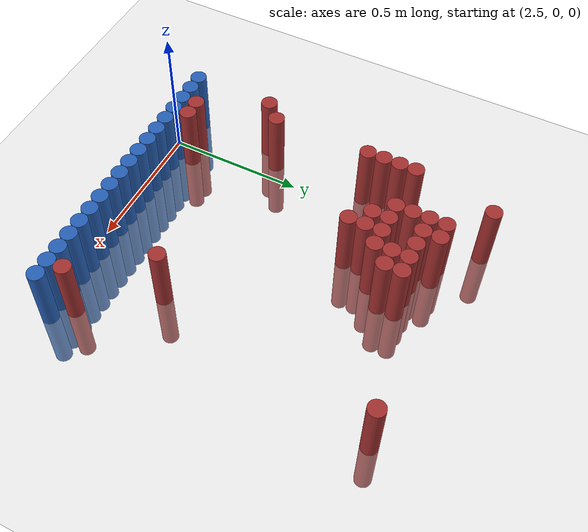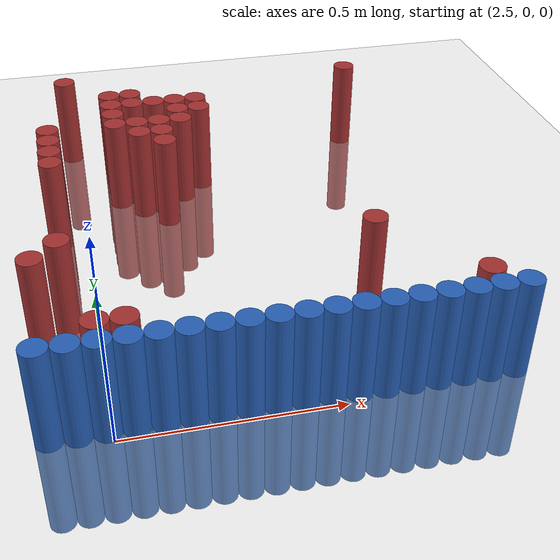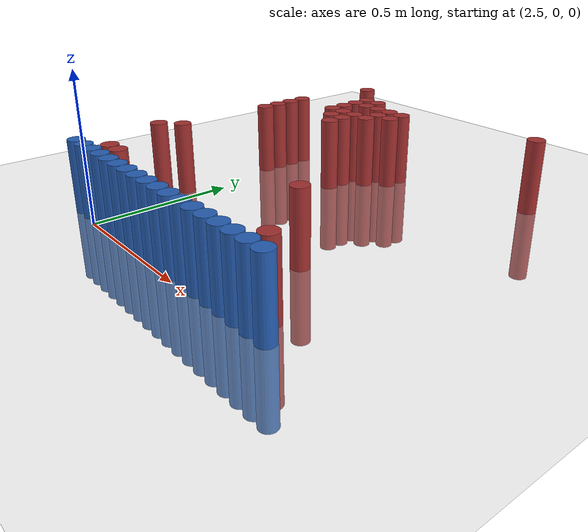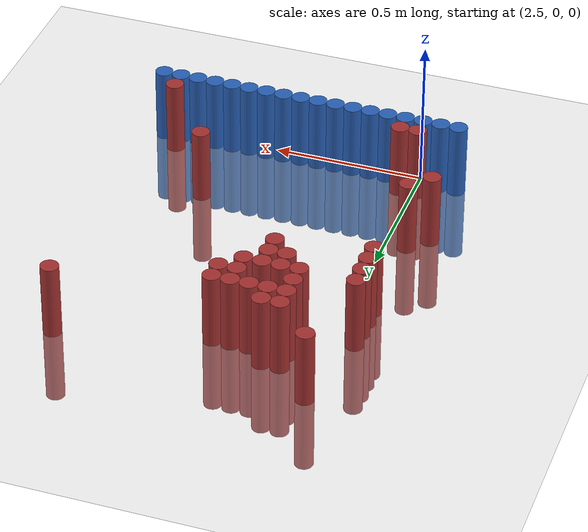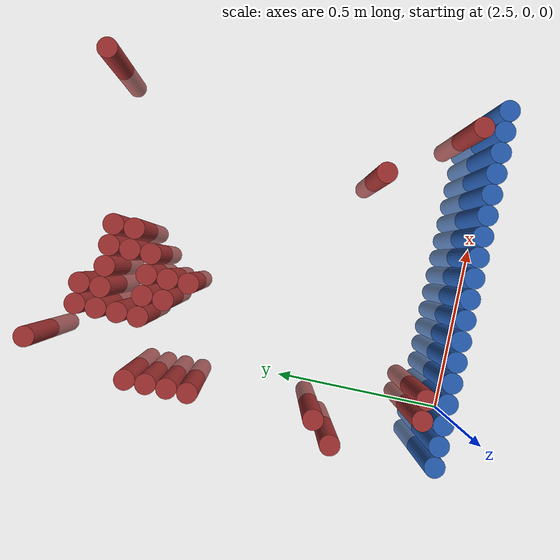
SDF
<sdf version="1.6">
 <world name="default">
  <model name="ground_plane">
   <static>1</static>
   <link name="link">
    <collision name="collision">
     <geometry><plane><normal>0 0 1</normal><size>100 100</size></plane></geometry>
     <surface><friction><ode><mu>100</mu><mu2>50</mu2></ode></friction></surface>
    </collision>
    <visual name="visual">
     <cast_shadows>0</cast_shadows>
     <geometry><plane><normal>0 0 1</normal><size>100 100</size></plane></geometry>
     <material>
      <script><uri>file://media/materials/scripts/gazebo.material</uri><name>Gazebo/Grey</name></script>
     </material>
    </visual>
   </link>
  </model>
  <model name="unit_cylinder_196">
   <static>1</static>
   <pose>2.490000 1.230000 0.000000 0.000000 0.000000 0.000000</pose>
   <link name="link">
    <inertial>
     <mass>1</mass>
     <inertia><ixx>0.145833</ixx><ixy>0</ixy><ixz>0</ixz><iyy>0.145833</iyy><iyz>0</iyz><izz>0.125</izz></inertia>
    </inertial>
    <collision name="collision">
     <geometry><cylinder><radius>0.030000</radius><length>0.5</length></cylinder></geometry>
    </collision>
    <visual name="visual">
     <geometry><cylinder><radius>0.030000</radius><length>0.5</length></cylinder></geometry>
     <material>
      <ambient>0.648000 0.192000 0.192000 1</ambient>
      <diffuse>0.648000 0.192000 0.192000 1</diffuse>
     </material>
     <material>
      <script><name>Gazebo/Grey</name><uri>file://media/materials/scripts/gazebo.material</uri></script>
     </material>
    </visual>
   </link>
  </model>
  <model name="unit_cylinder_205">
   <static>1</static>
   <pose>3.330000 1.170000 0.000000 0.000000 0.000000 0.000000</pose>
   <link name="link">
    <inertial>
     <mass>1</mass>
     <inertia><ixx>0.145833</ixx><ixy>0</ixy><ixz>0</ixz><iyy>0.145833</iyy><iyz>0</iyz><izz>0.125</izz></inertia>
    </inertial>
    <collision name="collision">
     <geometry><cylinder><radius>0.030000</radius><length>0.5</length></cylinder></geometry>
    </collision>
    <visual name="visual">
     <geometry><cylinder><radius>0.030000</radius><length>0.5</length></cylinder></geometry>
     <material>
      <ambient>0.648000 0.192000 0.192000 1</ambient>
      <diffuse>0.648000 0.192000 0.192000 1</diffuse>
     </material>
     <material>
      <script><name>Gazebo/Grey</name><uri>file://media/materials/scripts/gazebo.material</uri></script>
     </material>
    </visual>
   </link>
  </model>
  <model name="unit_cylinder_209">
   <static>1</static>
   <pose>2.610000 1.110000 0.000000 0.000000 0.000000 0.000000</pose>
   <link name="link">
    <inertial>
     <mass>1</mass>
     <inertia><ixx>0.145833</ixx><ixy>0</ixy><ixz>0</ixz><iyy>0.145833</iyy><iyz>0</iyz><izz>0.125</izz></inertia>
    </inertial>
    <collision name="collision">
     <geometry><cylinder><radius>0.030000</radius><length>0.5</length></cylinder></geometry>
    </collision>
    <visual name="visual">
     <geometry><cylinder><radius>0.030000</radius><length>0.5</length></cylinder></geometry>
     <material>
      <ambient>0.648000 0.192000 0.192000 1</ambient>
      <diffuse>0.648000 0.192000 0.192000 1</diffuse>
     </material>
     <material>
      <script><name>Gazebo/Grey</name><uri>file://media/materials/scripts/gazebo.material</uri></script>
     </material>
    </visual>
   </link>
  </model>
  <model name="unit_cylinder_210">
   <static>1</static>
   <pose>2.670000 1.110000 0.000000 0.000000 0.000000 0.000000</pose>
   <link name="link">
    <inertial>
     <mass>1</mass>
     <inertia><ixx>0.145833</ixx><ixy>0</ixy><ixz>0</ixz><iyy>0.145833</iyy><iyz>0</iyz><izz>0.125</izz></inertia>
    </inertial>
    <collision name="collision">
     <geometry><cylinder><radius>0.030000</radius><length>0.5</length></cylinder></geometry>
    </collision>
    <visual name="visual">
     <geometry><cylinder><radius>0.030000</radius><length>0.5</length></cylinder></geometry>
     <material>
      <ambient>0.648000 0.192000 0.192000 1</ambient>
      <diffuse>0.648000 0.192000 0.192000 1</diffuse>
     </material>
     <material>
      <script><name>Gazebo/Grey</name><uri>file://media/materials/scripts/gazebo.material</uri></script>
     </material>
    </visual>
   </link>
  </model>
  <model name="unit_cylinder_212">
   <static>1</static>
   <pose>2.610000 1.050000 0.000000 0.000000 0.000000 0.000000</pose>
   <link name="link">
    <inertial>
     <mass>1</mass>
     <inertia><ixx>0.145833</ixx><ixy>0</ixy><ixz>0</ixz><iyy>0.145833</iyy><iyz>0</iyz><izz>0.125</izz></inertia>
    </inertial>
    <collision name="collision">
     <geometry><cylinder><radius>0.030000</radius><length>0.5</length></cylinder></geometry>
    </collision>
    <visual name="visual">
     <geometry><cylinder><radius>0.030000</radius><length>0.5</length></cylinder></geometry>
     <material>
      <ambient>0.648000 0.192000 0.192000 1</ambient>
      <diffuse>0.648000 0.192000 0.192000 1</diffuse>
     </material>
     <material>
      <script><name>Gazebo/Grey</name><uri>file://media/materials/scripts/gazebo.material</uri></script>
     </material>
    </visual>
   </link>
  </model>
  <model name="unit_cylinder_213">
   <static>1</static>
   <pose>2.670000 1.050000 0.000000 0.000000 0.000000 0.000000</pose>
   <link name="link">
    <inertial>
     <mass>1</mass>
     <inertia><ixx>0.145833</ixx><ixy>0</ixy><ixz>0</ixz><iyy>0.145833</iyy><iyz>0</iyz><izz>0.125</izz></inertia>
    </inertial>
    <collision name="collision">
     <geometry><cylinder><radius>0.030000</radius><length>0.5</length></cylinder></geometry>
    </collision>
    <visual name="visual">
     <geometry><cylinder><radius>0.030000</radius><length>0.5</length></cylinder></geometry>
     <material>
      <ambient>0.648000 0.192000 0.192000 1</ambient>
      <diffuse>0.648000 0.192000 0.192000 1</diffuse>
     </material>
     <material>
      <script><name>Gazebo/Grey</name><uri>file://media/materials/scripts/gazebo.material</uri></script>
     </material>
    </visual>
   </link>
  </model>
  <model name="unit_cylinder_214">
   <static>1</static>
   <pose>2.730000 1.050000 0.000000 0.000000 0.000000 0.000000</pose>
   <link name="link">
    <inertial>
     <mass>1</mass>
     <inertia><ixx>0.145833</ixx><ixy>0</ixy><ixz>0</ixz><iyy>0.145833</iyy><iyz>0</iyz><izz>0.125</izz></inertia>
    </inertial>
    <collision name="collision">
     <geometry><cylinder><radius>0.030000</radius><length>0.5</length></cylinder></geometry>
    </collision>
    <visual name="visual">
     <geometry><cylinder><radius>0.030000</radius><length>0.5</length></cylinder></geometry>
     <material>
      <ambient>0.648000 0.192000 0.192000 1</ambient>
      <diffuse>0.648000 0.192000 0.192000 1</diffuse>
     </material>
     <material>
      <script><name>Gazebo/Grey</name><uri>file://media/materials/scripts/gazebo.material</uri></script>
     </material>
    </visual>
   </link>
  </model>
  <model name="unit_cylinder_215">
   <static>1</static>
   <pose>2.790000 1.050000 0.000000 0.000000 0.000000 0.000000</pose>
   <link name="link">
    <inertial>
     <mass>1</mass>
     <inertia><ixx>0.145833</ixx><ixy>0</ixy><ixz>0</ixz><iyy>0.145833</iyy><iyz>0</iyz><izz>0.125</izz></inertia>
    </inertial>
    <collision name="collision">
     <geometry><cylinder><radius>0.030000</radius><length>0.5</length></cylinder></geometry>
    </collision>
    <visual name="visual">
     <geometry><cylinder><radius>0.030000</radius><length>0.5</length></cylinder></geometry>
     <material>
      <ambient>0.648000 0.192000 0.192000 1</ambient>
      <diffuse>0.648000 0.192000 0.192000 1</diffuse>
     </material>
     <material>
      <script><name>Gazebo/Grey</name><uri>file://media/materials/scripts/gazebo.material</uri></script>
     </material>
    </visual>
   </link>
  </model>
  <model name="unit_cylinder_216">
   <static>1</static>
   <pose>2.850000 1.050000 0.000000 0.000000 0.000000 0.000000</pose>
   <link name="link">
    <inertial>
     <mass>1</mass>
     <inertia><ixx>0.145833</ixx><ixy>0</ixy><ixz>0</ixz><iyy>0.145833</iyy><iyz>0</iyz><izz>0.125</izz></inertia>
    </inertial>
    <collision name="collision">
     <geometry><cylinder><radius>0.030000</radius><length>0.5</length></cylinder></geometry>
    </collision>
    <visual name="visual">
     <geometry><cylinder><radius>0.030000</radius><length>0.5</length></cylinder></geometry>
     <material>
      <ambient>0.648000 0.192000 0.192000 1</ambient>
      <diffuse>0.648000 0.192000 0.192000 1</diffuse>
     </material>
     <material>
      <script><name>Gazebo/Grey</name><uri>file://media/materials/scripts/gazebo.material</uri></script>
     </material>
    </visual>
   </link>
  </model>
  <model name="unit_cylinder_219">
   <static>1</static>
   <pose>2.610000 0.990000 0.000000 0.000000 0.000000 0.000000</pose>
   <link name="link">
    <inertial>
     <mass>1</mass>
     <inertia><ixx>0.145833</ixx><ixy>0</ixy><ixz>0</ixz><iyy>0.145833</iyy><iyz>0</iyz><izz>0.125</izz></inertia>
    </inertial>
    <collision name="collision">
     <geometry><cylinder><radius>0.030000</radius><length>0.5</length></cylinder></geometry>
    </collision>
    <visual name="visual">
     <geometry><cylinder><radius>0.030000</radius><length>0.5</length></cylinder></geometry>
     <material>
      <ambient>0.648000 0.192000 0.192000 1</ambient>
      <diffuse>0.648000 0.192000 0.192000 1</diffuse>
     </material>
     <material>
      <script><name>Gazebo/Grey</name><uri>file://media/materials/scripts/gazebo.material</uri></script>
     </material>
    </visual>
   </link>
  </model>
  <model name="unit_cylinder_220">
   <static>1</static>
   <pose>2.790000 0.990000 0.000000 0.000000 0.000000 0.000000</pose>
   <link name="link">
    <inertial>
     <mass>1</mass>
     <inertia><ixx>0.145833</ixx><ixy>0</ixy><ixz>0</ixz><iyy>0.145833</iyy><iyz>0</iyz><izz>0.125</izz></inertia>
    </inertial>
    <collision name="collision">
     <geometry><cylinder><radius>0.030000</radius><length>0.5</length></cylinder></geometry>
    </collision>
    <visual name="visual">
     <geometry><cylinder><radius>0.030000</radius><length>0.5</length></cylinder></geometry>
     <material>
      <ambient>0.648000 0.192000 0.192000 1</ambient>
      <diffuse>0.648000 0.192000 0.192000 1</diffuse>
     </material>
     <material>
      <script><name>Gazebo/Grey</name><uri>file://media/materials/scripts/gazebo.material</uri></script>
     </material>
    </visual>
   </link>
  </model>
  <model name="unit_cylinder_221">
   <static>1</static>
   <pose>2.850000 0.990000 0.000000 0.000000 0.000000 0.000000</pose>
   <link name="link">
    <inertial>
     <mass>1</mass>
     <inertia><ixx>0.145833</ixx><ixy>0</ixy><ixz>0</ixz><iyy>0.145833</iyy><iyz>0</iyz><izz>0.125</izz></inertia>
    </inertial>
    <collision name="collision">
     <geometry><cylinder><radius>0.030000</radius><length>0.5</length></cylinder></geometry>
    </collision>
    <visual name="visual">
     <geometry><cylinder><radius>0.030000</radius><length>0.5</length></cylinder></geometry>
     <material>
      <ambient>0.648000 0.192000 0.192000 1</ambient>
      <diffuse>0.648000 0.192000 0.192000 1</diffuse>
     </material>
     <material>
      <script><name>Gazebo/Grey</name><uri>file://media/materials/scripts/gazebo.material</uri></script>
     </material>
    </visual>
   </link>
  </model>
  <model name="unit_cylinder_225">
   <static>1</static>
   <pose>2.430000 0.930000 0.000000 0.000000 0.000000 0.000000</pose>
   <link name="link">
    <inertial>
     <mass>1</mass>
     <inertia><ixx>0.145833</ixx><ixy>0</ixy><ixz>0</ixz><iyy>0.145833</iyy><iyz>0</iyz><izz>0.125</izz></inertia>
    </inertial>
    <collision name="collision">
     <geometry><cylinder><radius>0.030000</radius><length>0.5</length></cylinder></geometry>
    </collision>
    <visual name="visual">
     <geometry><cylinder><radius>0.030000</radius><length>0.5</length></cylinder></geometry>
     <material>
      <ambient>0.648000 0.192000 0.192000 1</ambient>
      <diffuse>0.648000 0.192000 0.192000 1</diffuse>
     </material>
     <material>
      <script><name>Gazebo/Grey</name><uri>file://media/materials/scripts/gazebo.material</uri></script>
     </material>
    </visual>
   </link>
  </model>
  <model name="unit_cylinder_226">
   <static>1</static>
   <pose>2.610000 0.930000 0.000000 0.000000 0.000000 0.000000</pose>
   <link name="link">
    <inertial>
     <mass>1</mass>
     <inertia><ixx>0.145833</ixx><ixy>0</ixy><ixz>0</ixz><iyy>0.145833</iyy><iyz>0</iyz><izz>0.125</izz></inertia>
    </inertial>
    <collision name="collision">
     <geometry><cylinder><radius>0.030000</radius><length>0.5</length></cylinder></geometry>
    </collision>
    <visual name="visual">
     <geometry><cylinder><radius>0.030000</radius><length>0.5</length></cylinder></geometry>
     <material>
      <ambient>0.648000 0.192000 0.192000 1</ambient>
      <diffuse>0.648000 0.192000 0.192000 1</diffuse>
     </material>
     <material>
      <script><name>Gazebo/Grey</name><uri>file://media/materials/scripts/gazebo.material</uri></script>
     </material>
    </visual>
   </link>
  </model>
  <model name="unit_cylinder_227">
   <static>1</static>
   <pose>2.670000 0.930000 0.000000 0.000000 0.000000 0.000000</pose>
   <link name="link">
    <inertial>
     <mass>1</mass>
     <inertia><ixx>0.145833</ixx><ixy>0</ixy><ixz>0</ixz><iyy>0.145833</iyy><iyz>0</iyz><izz>0.125</izz></inertia>
    </inertial>
    <collision name="collision">
     <geometry><cylinder><radius>0.030000</radius><length>0.5</length></cylinder></geometry>
    </collision>
    <visual name="visual">
     <geometry><cylinder><radius>0.030000</radius><length>0.5</length></cylinder></geometry>
     <material>
      <ambient>0.648000 0.192000 0.192000 1</ambient>
      <diffuse>0.648000 0.192000 0.192000 1</diffuse>
     </material>
     <material>
      <script><name>Gazebo/Grey</name><uri>file://media/materials/scripts/gazebo.material</uri></script>
     </material>
    </visual>
   </link>
  </model>
  <model name="unit_cylinder_228">
   <static>1</static>
   <pose>2.730000 0.930000 0.000000 0.000000 0.000000 0.000000</pose>
   <link name="link">
    <inertial>
     <mass>1</mass>
     <inertia><ixx>0.145833</ixx><ixy>0</ixy><ixz>0</ixz><iyy>0.145833</iyy><iyz>0</iyz><izz>0.125</izz></inertia>
    </inertial>
    <collision name="collision">
     <geometry><cylinder><radius>0.030000</radius><length>0.5</length></cylinder></geometry>
    </collision>
    <visual name="visual">
     <geometry><cylinder><radius>0.030000</radius><length>0.5</length></cylinder></geometry>
     <material>
      <ambient>0.648000 0.192000 0.192000 1</ambient>
      <diffuse>0.648000 0.192000 0.192000 1</diffuse>
     </material>
     <material>
      <script><name>Gazebo/Grey</name><uri>file://media/materials/scripts/gazebo.material</uri></script>
     </material>
    </visual>
   </link>
  </model>
  <model name="unit_cylinder_229">
   <static>1</static>
   <pose>2.790000 0.930000 0.000000 0.000000 0.000000 0.000000</pose>
   <link name="link">
    <inertial>
     <mass>1</mass>
     <inertia><ixx>0.145833</ixx><ixy>0</ixy><ixz>0</ixz><iyy>0.145833</iyy><iyz>0</iyz><izz>0.125</izz></inertia>
    </inertial>
    <collision name="collision">
     <geometry><cylinder><radius>0.030000</radius><length>0.5</length></cylinder></geometry>
    </collision>
    <visual name="visual">
     <geometry><cylinder><radius>0.030000</radius><length>0.5</length></cylinder></geometry>
     <material>
      <ambient>0.648000 0.192000 0.192000 1</ambient>
      <diffuse>0.648000 0.192000 0.192000 1</diffuse>
     </material>
     <material>
      <script><name>Gazebo/Grey</name><uri>file://media/materials/scripts/gazebo.material</uri></script>
     </material>
    </visual>
   </link>
  </model>
  <model name="unit_cylinder_234">
   <static>1</static>
   <pose>2.430000 0.870000 0.000000 0.000000 0.000000 0.000000</pose>
   <link name="link">
    <inertial>
     <mass>1</mass>
     <inertia><ixx>0.145833</ixx><ixy>0</ixy><ixz>0</ixz><iyy>0.145833</iyy><iyz>0</iyz><izz>0.125</izz></inertia>
    </inertial>
    <collision name="collision">
     <geometry><cylinder><radius>0.030000</radius><length>0.5</length></cylinder></geometry>
    </collision>
    <visual name="visual">
     <geometry><cylinder><radius>0.030000</radius><length>0.5</length></cylinder></geometry>
     <material>
      <ambient>0.648000 0.192000 0.192000 1</ambient>
      <diffuse>0.648000 0.192000 0.192000 1</diffuse>
     </material>
     <material>
      <script><name>Gazebo/Grey</name><uri>file://media/materials/scripts/gazebo.material</uri></script>
     </material>
    </visual>
   </link>
  </model>
  <model name="unit_cylinder_235">
   <static>1</static>
   <pose>2.670000 0.870000 0.000000 0.000000 0.000000 0.000000</pose>
   <link name="link">
    <inertial>
     <mass>1</mass>
     <inertia><ixx>0.145833</ixx><ixy>0</ixy><ixz>0</ixz><iyy>0.145833</iyy><iyz>0</iyz><izz>0.125</izz></inertia>
    </inertial>
    <collision name="collision">
     <geometry><cylinder><radius>0.030000</radius><length>0.5</length></cylinder></geometry>
    </collision>
    <visual name="visual">
     <geometry><cylinder><radius>0.030000</radius><length>0.5</length></cylinder></geometry>
     <material>
      <ambient>0.648000 0.192000 0.192000 1</ambient>
      <diffuse>0.648000 0.192000 0.192000 1</diffuse>
     </material>
     <material>
      <script><name>Gazebo/Grey</name><uri>file://media/materials/scripts/gazebo.material</uri></script>
     </material>
    </visual>
   </link>
  </model>
  <model name="unit_cylinder_236">
   <static>1</static>
   <pose>2.730000 0.870000 0.000000 0.000000 0.000000 0.000000</pose>
   <link name="link">
    <inertial>
     <mass>1</mass>
     <inertia><ixx>0.145833</ixx><ixy>0</ixy><ixz>0</ixz><iyy>0.145833</iyy><iyz>0</iyz><izz>0.125</izz></inertia>
    </inertial>
    <collision name="collision">
     <geometry><cylinder><radius>0.030000</radius><length>0.5</length></cylinder></geometry>
    </collision>
    <visual name="visual">
     <geometry><cylinder><radius>0.030000</radius><length>0.5</length></cylinder></geometry>
     <material>
      <ambient>0.648000 0.192000 0.192000 1</ambient>
      <diffuse>0.648000 0.192000 0.192000 1</diffuse>
     </material>
     <material>
      <script><name>Gazebo/Grey</name><uri>file://media/materials/scripts/gazebo.material</uri></script>
     </material>
    </visual>
   </link>
  </model>
  <model name="unit_cylinder_240">
   <static>1</static>
   <pose>2.430000 0.810000 0.000000 0.000000 0.000000 0.000000</pose>
   <link name="link">
    <inertial>
     <mass>1</mass>
     <inertia><ixx>0.145833</ixx><ixy>0</ixy><ixz>0</ixz><iyy>0.145833</iyy><iyz>0</iyz><izz>0.125</izz></inertia>
    </inertial>
    <collision name="collision">
     <geometry><cylinder><radius>0.030000</radius><length>0.5</length></cylinder></geometry>
    </collision>
    <visual name="visual">
     <geometry><cylinder><radius>0.030000</radius><length>0.5</length></cylinder></geometry>
     <material>
      <ambient>0.648000 0.192000 0.192000 1</ambient>
      <diffuse>0.648000 0.192000 0.192000 1</diffuse>
     </material>
     <material>
      <script><name>Gazebo/Grey</name><uri>file://media/materials/scripts/gazebo.material</uri></script>
     </material>
    </visual>
   </link>
  </model>
  <model name="unit_cylinder_241">
   <static>1</static>
   <pose>2.730000 0.810000 0.000000 0.000000 0.000000 0.000000</pose>
   <link name="link">
    <inertial>
     <mass>1</mass>
     <inertia><ixx>0.145833</ixx><ixy>0</ixy><ixz>0</ixz><iyy>0.145833</iyy><iyz>0</iyz><izz>0.125</izz></inertia>
    </inertial>
    <collision name="collision">
     <geometry><cylinder><radius>0.030000</radius><length>0.5</length></cylinder></geometry>
    </collision>
    <visual name="visual">
     <geometry><cylinder><radius>0.030000</radius><length>0.5</length></cylinder></geometry>
     <material>
      <ambient>0.648000 0.192000 0.192000 1</ambient>
      <diffuse>0.648000 0.192000 0.192000 1</diffuse>
     </material>
     <material>
      <script><name>Gazebo/Grey</name><uri>file://media/materials/scripts/gazebo.material</uri></script>
     </material>
    </visual>
   </link>
  </model>
  <model name="unit_cylinder_243">
   <static>1</static>
   <pose>2.430000 0.750000 0.000000 0.000000 0.000000 0.000000</pose>
   <link name="link">
    <inertial>
     <mass>1</mass>
     <inertia><ixx>0.145833</ixx><ixy>0</ixy><ixz>0</ixz><iyy>0.145833</iyy><iyz>0</iyz><izz>0.125</izz></inertia>
    </inertial>
    <collision name="collision">
     <geometry><cylinder><radius>0.030000</radius><length>0.5</length></cylinder></geometry>
    </collision>
    <visual name="visual">
     <geometry><cylinder><radius>0.030000</radius><length>0.5</length></cylinder></geometry>
     <material>
      <ambient>0.648000 0.192000 0.192000 1</ambient>
      <diffuse>0.648000 0.192000 0.192000 1</diffuse>
     </material>
     <material>
      <script><name>Gazebo/Grey</name><uri>file://media/materials/scripts/gazebo.material</uri></script>
     </material>
    </visual>
   </link>
  </model>
  <model name="unit_cylinder_266">
   <static>1</static>
   <pose>2.430000 0.390000 0.000000 0.000000 0.000000 0.000000</pose>
   <link name="link">
    <inertial>
     <mass>1</mass>
     <inertia><ixx>0.145833</ixx><ixy>0</ixy><ixz>0</ixz><iyy>0.145833</iyy><iyz>0</iyz><izz>0.125</izz></inertia>
    </inertial>
    <collision name="collision">
     <geometry><cylinder><radius>0.030000</radius><length>0.5</length></cylinder></geometry>
    </collision>
    <visual name="visual">
     <geometry><cylinder><radius>0.030000</radius><length>0.5</length></cylinder></geometry>
     <material>
      <ambient>0.648000 0.192000 0.192000 1</ambient>
      <diffuse>0.648000 0.192000 0.192000 1</diffuse>
     </material>
     <material>
      <script><name>Gazebo/Grey</name><uri>file://media/materials/scripts/gazebo.material</uri></script>
     </material>
    </visual>
   </link>
  </model>
  <model name="unit_cylinder_272">
   <static>1</static>
   <pose>2.370000 0.330000 0.000000 0.000000 0.000000 0.000000</pose>
   <link name="link">
    <inertial>
     <mass>1</mass>
     <inertia><ixx>0.145833</ixx><ixy>0</ixy><ixz>0</ixz><iyy>0.145833</iyy><iyz>0</iyz><izz>0.125</izz></inertia>
    </inertial>
    <collision name="collision">
     <geometry><cylinder><radius>0.030000</radius><length>0.5</length></cylinder></geometry>
    </collision>
    <visual name="visual">
     <geometry><cylinder><radius>0.030000</radius><length>0.5</length></cylinder></geometry>
     <material>
      <ambient>0.648000 0.192000 0.192000 1</ambient>
      <diffuse>0.648000 0.192000 0.192000 1</diffuse>
     </material>
     <material>
      <script><name>Gazebo/Grey</name><uri>file://media/materials/scripts/gazebo.material</uri></script>
     </material>
    </visual>
   </link>
  </model>
  <model name="unit_cylinder_273">
   <static>1</static>
   <pose>3.150000 0.330000 0.000000 0.000000 0.000000 0.000000</pose>
   <link name="link">
    <inertial>
     <mass>1</mass>
     <inertia><ixx>0.145833</ixx><ixy>0</ixy><ixz>0</ixz><iyy>0.145833</iyy><iyz>0</iyz><izz>0.125</izz></inertia>
    </inertial>
    <collision name="collision">
     <geometry><cylinder><radius>0.030000</radius><length>0.5</length></cylinder></geometry>
    </collision>
    <visual name="visual">
     <geometry><cylinder><radius>0.030000</radius><length>0.5</length></cylinder></geometry>
     <material>
      <ambient>0.648000 0.192000 0.192000 1</ambient>
      <diffuse>0.648000 0.192000 0.192000 1</diffuse>
     </material>
     <material>
      <script><name>Gazebo/Grey</name><uri>file://media/materials/scripts/gazebo.material</uri></script>
     </material>
    </visual>
   </link>
  </model>
  <model name="unit_cylinder_292">
   <static>1</static>
   <pose>2.490000 0.090000 0.000000 0.000000 0.000000 0.000000</pose>
   <link name="link">
    <inertial>
     <mass>1</mass>
     <inertia><ixx>0.145833</ixx><ixy>0</ixy><ixz>0</ixz><iyy>0.145833</iyy><iyz>0</iyz><izz>0.125</izz></inertia>
    </inertial>
    <collision name="collision">
     <geometry><cylinder><radius>0.030000</radius><length>0.5</length></cylinder></geometry>
    </collision>
    <visual name="visual">
     <geometry><cylinder><radius>0.030000</radius><length>0.5</length></cylinder></geometry>
     <material>
      <ambient>0.648000 0.192000 0.192000 1</ambient>
      <diffuse>0.648000 0.192000 0.192000 1</diffuse>
     </material>
     <material>
      <script><name>Gazebo/Grey</name><uri>file://media/materials/scripts/gazebo.material</uri></script>
     </material>
    </visual>
   </link>
  </model>
  <model name="unit_cylinder_293">
   <static>1</static>
   <pose>2.550000 0.090000 0.000000 0.000000 0.000000 0.000000</pose>
   <link name="link">
    <inertial>
     <mass>1</mass>
     <inertia><ixx>0.145833</ixx><ixy>0</ixy><ixz>0</ixz><iyy>0.145833</iyy><iyz>0</iyz><izz>0.125</izz></inertia>
    </inertial>
    <collision name="collision">
     <geometry><cylinder><radius>0.030000</radius><length>0.5</length></cylinder></geometry>
    </collision>
    <visual name="visual">
     <geometry><cylinder><radius>0.030000</radius><length>0.5</length></cylinder></geometry>
     <material>
      <ambient>0.648000 0.192000 0.192000 1</ambient>
      <diffuse>0.648000 0.192000 0.192000 1</diffuse>
     </material>
     <material>
      <script><name>Gazebo/Grey</name><uri>file://media/materials/scripts/gazebo.material</uri></script>
     </material>
    </visual>
   </link>
  </model>
  <model name="unit_cylinder_294">
   <static>1</static>
   <pose>3.330000 0.090000 0.000000 0.000000 0.000000 0.000000</pose>
   <link name="link">
    <inertial>
     <mass>1</mass>
     <inertia><ixx>0.145833</ixx><ixy>0</ixy><ixz>0</ixz><iyy>0.145833</iyy><iyz>0</iyz><izz>0.125</izz></inertia>
    </inertial>
    <collision name="collision">
     <geometry><cylinder><radius>0.030000</radius><length>0.5</length></cylinder></geometry>
    </collision>
    <visual name="visual">
     <geometry><cylinder><radius>0.030000</radius><length>0.5</length></cylinder></geometry>
     <material>
      <ambient>0.648000 0.192000 0.192000 1</ambient>
      <diffuse>0.648000 0.192000 0.192000 1</diffuse>
     </material>
     <material>
      <script><name>Gazebo/Grey</name><uri>file://media/materials/scripts/gazebo.material</uri></script>
     </material>
    </visual>
   </link>
  </model>
  <model name="unit_cylinder_306">
   <static>1</static>
   <pose>2.370000 0.030000 0.000000 0.000000 0.000000 0.000000</pose>
   <link name="link">
    <inertial>
     <mass>1</mass>
     <inertia><ixx>0.145833</ixx><ixy>0</ixy><ixz>0</ixz><iyy>0.145833</iyy><iyz>0</iyz><izz>0.125</izz></inertia>
    </inertial>
    <collision name="collision">
     <geometry><cylinder><radius>0.030000</radius><length>0.5</length></cylinder></geometry>
    </collision>
    <visual name="visual">
     <geometry><cylinder><radius>0.030000</radius><length>0.5</length></cylinder></geometry>
     <material>
      <ambient>0.152000 0.379000 0.720000 1</ambient>
      <diffuse>0.152000 0.379000 0.720000 1</diffuse>
     </material>
     <material>
      <script><name>Gazebo/Grey</name><uri>file://media/materials/scripts/gazebo.material</uri></script>
     </material>
    </visual>
   </link>
  </model>
  <model name="unit_cylinder_307">
   <static>1</static>
   <pose>2.430000 0.030000 0.000000 0.000000 0.000000 0.000000</pose>
   <link name="link">
    <inertial>
     <mass>1</mass>
     <inertia><ixx>0.145833</ixx><ixy>0</ixy><ixz>0</ixz><iyy>0.145833</iyy><iyz>0</iyz><izz>0.125</izz></inertia>
    </inertial>
    <collision name="collision">
     <geometry><cylinder><radius>0.030000</radius><length>0.5</length></cylinder></geometry>
    </collision>
    <visual name="visual">
     <geometry><cylinder><radius>0.030000</radius><length>0.5</length></cylinder></geometry>
     <material>
      <ambient>0.152000 0.379000 0.720000 1</ambient>
      <diffuse>0.152000 0.379000 0.720000 1</diffuse>
     </material>
     <material>
      <script><name>Gazebo/Grey</name><uri>file://media/materials/scripts/gazebo.material</uri></script>
     </material>
    </visual>
   </link>
  </model>
  <model name="unit_cylinder_308">
   <static>1</static>
   <pose>2.490000 0.030000 0.000000 0.000000 0.000000 0.000000</pose>
   <link name="link">
    <inertial>
     <mass>1</mass>
     <inertia><ixx>0.145833</ixx><ixy>0</ixy><ixz>0</ixz><iyy>0.145833</iyy><iyz>0</iyz><izz>0.125</izz></inertia>
    </inertial>
    <collision name="collision">
     <geometry><cylinder><radius>0.030000</radius><length>0.5</length></cylinder></geometry>
    </collision>
    <visual name="visual">
     <geometry><cylinder><radius>0.030000</radius><length>0.5</length></cylinder></geometry>
     <material>
      <ambient>0.152000 0.379000 0.720000 1</ambient>
      <diffuse>0.152000 0.379000 0.720000 1</diffuse>
     </material>
     <material>
      <script><name>Gazebo/Grey</name><uri>file://media/materials/scripts/gazebo.material</uri></script>
     </material>
    </visual>
   </link>
  </model>
  <model name="unit_cylinder_309">
   <static>1</static>
   <pose>2.550000 0.030000 0.000000 0.000000 0.000000 0.000000</pose>
   <link name="link">
    <inertial>
     <mass>1</mass>
     <inertia><ixx>0.145833</ixx><ixy>0</ixy><ixz>0</ixz><iyy>0.145833</iyy><iyz>0</iyz><izz>0.125</izz></inertia>
    </inertial>
    <collision name="collision">
     <geometry><cylinder><radius>0.030000</radius><length>0.5</length></cylinder></geometry>
    </collision>
    <visual name="visual">
     <geometry><cylinder><radius>0.030000</radius><length>0.5</length></cylinder></geometry>
     <material>
      <ambient>0.152000 0.379000 0.720000 1</ambient>
      <diffuse>0.152000 0.379000 0.720000 1</diffuse>
     </material>
     <material>
      <script><name>Gazebo/Grey</name><uri>file://media/materials/scripts/gazebo.material</uri></script>
     </material>
    </visual>
   </link>
  </model>
  <model name="unit_cylinder_310">
   <static>1</static>
   <pose>2.610000 0.030000 0.000000 0.000000 0.000000 0.000000</pose>
   <link name="link">
    <inertial>
     <mass>1</mass>
     <inertia><ixx>0.145833</ixx><ixy>0</ixy><ixz>0</ixz><iyy>0.145833</iyy><iyz>0</iyz><izz>0.125</izz></inertia>
    </inertial>
    <collision name="collision">
     <geometry><cylinder><radius>0.030000</radius><length>0.5</length></cylinder></geometry>
    </collision>
    <visual name="visual">
     <geometry><cylinder><radius>0.030000</radius><length>0.5</length></cylinder></geometry>
     <material>
      <ambient>0.152000 0.379000 0.720000 1</ambient>
      <diffuse>0.152000 0.379000 0.720000 1</diffuse>
     </material>
     <material>
      <script><name>Gazebo/Grey</name><uri>file://media/materials/scripts/gazebo.material</uri></script>
     </material>
    </visual>
   </link>
  </model>
  <model name="unit_cylinder_311">
   <static>1</static>
   <pose>2.670000 0.030000 0.000000 0.000000 0.000000 0.000000</pose>
   <link name="link">
    <inertial>
     <mass>1</mass>
     <inertia><ixx>0.145833</ixx><ixy>0</ixy><ixz>0</ixz><iyy>0.145833</iyy><iyz>0</iyz><izz>0.125</izz></inertia>
    </inertial>
    <collision name="collision">
     <geometry><cylinder><radius>0.030000</radius><length>0.5</length></cylinder></geometry>
    </collision>
    <visual name="visual">
     <geometry><cylinder><radius>0.030000</radius><length>0.5</length></cylinder></geometry>
     <material>
      <ambient>0.152000 0.379000 0.720000 1</ambient>
      <diffuse>0.152000 0.379000 0.720000 1</diffuse>
     </material>
     <material>
      <script><name>Gazebo/Grey</name><uri>file://media/materials/scripts/gazebo.material</uri></script>
     </material>
    </visual>
   </link>
  </model>
  <model name="unit_cylinder_312">
   <static>1</static>
   <pose>2.730000 0.030000 0.000000 0.000000 0.000000 0.000000</pose>
   <link name="link">
    <inertial>
     <mass>1</mass>
     <inertia><ixx>0.145833</ixx><ixy>0</ixy><ixz>0</ixz><iyy>0.145833</iyy><iyz>0</iyz><izz>0.125</izz></inertia>
    </inertial>
    <collision name="collision">
     <geometry><cylinder><radius>0.030000</radius><length>0.5</length></cylinder></geometry>
    </collision>
    <visual name="visual">
     <geometry><cylinder><radius>0.030000</radius><length>0.5</length></cylinder></geometry>
     <material>
      <ambient>0.152000 0.379000 0.720000 1</ambient>
      <diffuse>0.152000 0.379000 0.720000 1</diffuse>
     </material>
     <material>
      <script><name>Gazebo/Grey</name><uri>file://media/materials/scripts/gazebo.material</uri></script>
     </material>
    </visual>
   </link>
  </model>
  <model name="unit_cylinder_313">
   <static>1</static>
   <pose>2.790000 0.030000 0.000000 0.000000 0.000000 0.000000</pose>
   <link name="link">
    <inertial>
     <mass>1</mass>
     <inertia><ixx>0.145833</ixx><ixy>0</ixy><ixz>0</ixz><iyy>0.145833</iyy><iyz>0</iyz><izz>0.125</izz></inertia>
    </inertial>
    <collision name="collision">
     <geometry><cylinder><radius>0.030000</radius><length>0.5</length></cylinder></geometry>
    </collision>
    <visual name="visual">
     <geometry><cylinder><radius>0.030000</radius><length>0.5</length></cylinder></geometry>
     <material>
      <ambient>0.152000 0.379000 0.720000 1</ambient>
      <diffuse>0.152000 0.379000 0.720000 1</diffuse>
     </material>
     <material>
      <script><name>Gazebo/Grey</name><uri>file://media/materials/scripts/gazebo.material</uri></script>
     </material>
    </visual>
   </link>
  </model>
  <model name="unit_cylinder_314">
   <static>1</static>
   <pose>2.850000 0.030000 0.000000 0.000000 0.000000 0.000000</pose>
   <link name="link">
    <inertial>
     <mass>1</mass>
     <inertia><ixx>0.145833</ixx><ixy>0</ixy><ixz>0</ixz><iyy>0.145833</iyy><iyz>0</iyz><izz>0.125</izz></inertia>
    </inertial>
    <collision name="collision">
     <geometry><cylinder><radius>0.030000</radius><length>0.5</length></cylinder></geometry>
    </collision>
    <visual name="visual">
     <geometry><cylinder><radius>0.030000</radius><length>0.5</length></cylinder></geometry>
     <material>
      <ambient>0.152000 0.379000 0.720000 1</ambient>
      <diffuse>0.152000 0.379000 0.720000 1</diffuse>
     </material>
     <material>
      <script><name>Gazebo/Grey</name><uri>file://media/materials/scripts/gazebo.material</uri></script>
     </material>
    </visual>
   </link>
  </model>
  <model name="unit_cylinder_315">
   <static>1</static>
   <pose>2.910000 0.030000 0.000000 0.000000 0.000000 0.000000</pose>
   <link name="link">
    <inertial>
     <mass>1</mass>
     <inertia><ixx>0.145833</ixx><ixy>0</ixy><ixz>0</ixz><iyy>0.145833</iyy><iyz>0</iyz><izz>0.125</izz></inertia>
    </inertial>
    <collision name="collision">
     <geometry><cylinder><radius>0.030000</radius><length>0.5</length></cylinder></geometry>
    </collision>
    <visual name="visual">
     <geometry><cylinder><radius>0.030000</radius><length>0.5</length></cylinder></geometry>
     <material>
      <ambient>0.152000 0.379000 0.720000 1</ambient>
      <diffuse>0.152000 0.379000 0.720000 1</diffuse>
     </material>
     <material>
      <script><name>Gazebo/Grey</name><uri>file://media/materials/scripts/gazebo.material</uri></script>
     </material>
    </visual>
   </link>
  </model>
  <model name="unit_cylinder_316">
   <static>1</static>
   <pose>2.970000 0.030000 0.000000 0.000000 0.000000 0.000000</pose>
   <link name="link">
    <inertial>
     <mass>1</mass>
     <inertia><ixx>0.145833</ixx><ixy>0</ixy><ixz>0</ixz><iyy>0.145833</iyy><iyz>0</iyz><izz>0.125</izz></inertia>
    </inertial>
    <collision name="collision">
     <geometry><cylinder><radius>0.030000</radius><length>0.5</length></cylinder></geometry>
    </collision>
    <visual name="visual">
     <geometry><cylinder><radius>0.030000</radius><length>0.5</length></cylinder></geometry>
     <material>
      <ambient>0.152000 0.379000 0.720000 1</ambient>
      <diffuse>0.152000 0.379000 0.720000 1</diffuse>
     </material>
     <material>
      <script><name>Gazebo/Grey</name><uri>file://media/materials/scripts/gazebo.material</uri></script>
     </material>
    </visual>
   </link>
  </model>
  <model name="unit_cylinder_317">
   <static>1</static>
   <pose>3.030000 0.030000 0.000000 0.000000 0.000000 0.000000</pose>
   <link name="link">
    <inertial>
     <mass>1</mass>
     <inertia><ixx>0.145833</ixx><ixy>0</ixy><ixz>0</ixz><iyy>0.145833</iyy><iyz>0</iyz><izz>0.125</izz></inertia>
    </inertial>
    <collision name="collision">
     <geometry><cylinder><radius>0.030000</radius><length>0.5</length></cylinder></geometry>
    </collision>
    <visual name="visual">
     <geometry><cylinder><radius>0.030000</radius><length>0.5</length></cylinder></geometry>
     <material>
      <ambient>0.152000 0.379000 0.720000 1</ambient>
      <diffuse>0.152000 0.379000 0.720000 1</diffuse>
     </material>
     <material>
      <script><name>Gazebo/Grey</name><uri>file://media/materials/scripts/gazebo.material</uri></script>
     </material>
    </visual>
   </link>
  </model>
  <model name="unit_cylinder_318">
   <static>1</static>
   <pose>3.090000 0.030000 0.000000 0.000000 0.000000 0.000000</pose>
   <link name="link">
    <inertial>
     <mass>1</mass>
     <inertia><ixx>0.145833</ixx><ixy>0</ixy><ixz>0</ixz><iyy>0.145833</iyy><iyz>0</iyz><izz>0.125</izz></inertia>
    </inertial>
    <collision name="collision">
     <geometry><cylinder><radius>0.030000</radius><length>0.5</length></cylinder></geometry>
    </collision>
    <visual name="visual">
     <geometry><cylinder><radius>0.030000</radius><length>0.5</length></cylinder></geometry>
     <material>
      <ambient>0.152000 0.379000 0.720000 1</ambient>
      <diffuse>0.152000 0.379000 0.720000 1</diffuse>
     </material>
     <material>
      <script><name>Gazebo/Grey</name><uri>file://media/materials/scripts/gazebo.material</uri></script>
     </material>
    </visual>
   </link>
  </model>
  <model name="unit_cylinder_319">
   <static>1</static>
   <pose>3.150000 0.030000 0.000000 0.000000 0.000000 0.000000</pose>
   <link name="link">
    <inertial>
     <mass>1</mass>
     <inertia><ixx>0.145833</ixx><ixy>0</ixy><ixz>0</ixz><iyy>0.145833</iyy><iyz>0</iyz><izz>0.125</izz></inertia>
    </inertial>
    <collision name="collision">
     <geometry><cylinder><radius>0.030000</radius><length>0.5</length></cylinder></geometry>
    </collision>
    <visual name="visual">
     <geometry><cylinder><radius>0.030000</radius><length>0.5</length></cylinder></geometry>
     <material>
      <ambient>0.152000 0.379000 0.720000 1</ambient>
      <diffuse>0.152000 0.379000 0.720000 1</diffuse>
     </material>
     <material>
      <script><name>Gazebo/Grey</name><uri>file://media/materials/scripts/gazebo.material</uri></script>
     </material>
    </visual>
   </link>
  </model>
  <model name="unit_cylinder_320">
   <static>1</static>
   <pose>3.210000 0.030000 0.000000 0.000000 0.000000 0.000000</pose>
   <link name="link">
    <inertial>
     <mass>1</mass>
     <inertia><ixx>0.145833</ixx><ixy>0</ixy><ixz>0</ixz><iyy>0.145833</iyy><iyz>0</iyz><izz>0.125</izz></inertia>
    </inertial>
    <collision name="collision">
     <geometry><cylinder><radius>0.030000</radius><length>0.5</length></cylinder></geometry>
    </collision>
    <visual name="visual">
     <geometry><cylinder><radius>0.030000</radius><length>0.5</length></cylinder></geometry>
     <material>
      <ambient>0.152000 0.379000 0.720000 1</ambient>
      <diffuse>0.152000 0.379000 0.720000 1</diffuse>
     </material>
     <material>
      <script><name>Gazebo/Grey</name><uri>file://media/materials/scripts/gazebo.material</uri></script>
     </material>
    </visual>
   </link>
  </model>
  <model name="unit_cylinder_321">
   <static>1</static>
   <pose>3.270000 0.030000 0.000000 0.000000 0.000000 0.000000</pose>
   <link name="link">
    <inertial>
     <mass>1</mass>
     <inertia><ixx>0.145833</ixx><ixy>0</ixy><ixz>0</ixz><iyy>0.145833</iyy><iyz>0</iyz><izz>0.125</izz></inertia>
    </inertial>
    <collision name="collision">
     <geometry><cylinder><radius>0.030000</radius><length>0.5</length></cylinder></geometry>
    </collision>
    <visual name="visual">
     <geometry><cylinder><radius>0.030000</radius><length>0.5</length></cylinder></geometry>
     <material>
      <ambient>0.152000 0.379000 0.720000 1</ambient>
      <diffuse>0.152000 0.379000 0.720000 1</diffuse>
     </material>
     <material>
      <script><name>Gazebo/Grey</name><uri>file://media/materials/scripts/gazebo.material</uri></script>
     </material>
    </visual>
   </link>
  </model>
  <model name="unit_cylinder_322">
   <static>1</static>
   <pose>3.330000 0.030000 0.000000 0.000000 0.000000 0.000000</pose>
   <link name="link">
    <inertial>
     <mass>1</mass>
     <inertia><ixx>0.145833</ixx><ixy>0</ixy><ixz>0</ixz><iyy>0.145833</iyy><iyz>0</iyz><izz>0.125</izz></inertia>
    </inertial>
    <collision name="collision">
     <geometry><cylinder><radius>0.030000</radius><length>0.5</length></cylinder></geometry>
    </collision>
    <visual name="visual">
     <geometry><cylinder><radius>0.030000</radius><length>0.5</length></cylinder></geometry>
     <material>
      <ambient>0.152000 0.379000 0.720000 1</ambient>
      <diffuse>0.152000 0.379000 0.720000 1</diffuse>
     </material>
     <material>
      <script><name>Gazebo/Grey</name><uri>file://media/materials/scripts/gazebo.material</uri></script>
     </material>
    </visual>
   </link>
  </model>
  <model name="unit_cylinder_323">
   <static>1</static>
   <pose>3.390000 0.030000 0.000000 0.000000 0.000000 0.000000</pose>
   <link name="link">
    <inertial>
     <mass>1</mass>
     <inertia><ixx>0.145833</ixx><ixy>0</ixy><ixz>0</ixz><iyy>0.145833</iyy><iyz>0</iyz><izz>0.125</izz></inertia>
    </inertial>
    <collision name="collision">
     <geometry><cylinder><radius>0.030000</radius><length>0.5</length></cylinder></geometry>
    </collision>
    <visual name="visual">
     <geometry><cylinder><radius>0.030000</radius><length>0.5</length></cylinder></geometry>
     <material>
      <ambient>0.152000 0.379000 0.720000 1</ambient>
      <diffuse>0.152000 0.379000 0.720000 1</diffuse>
     </material>
     <material>
      <script><name>Gazebo/Grey</name><uri>file://media/materials/scripts/gazebo.material</uri></script>
     </material>
    </visual>
   </link>
  </model>
 </world>
</sdf>
